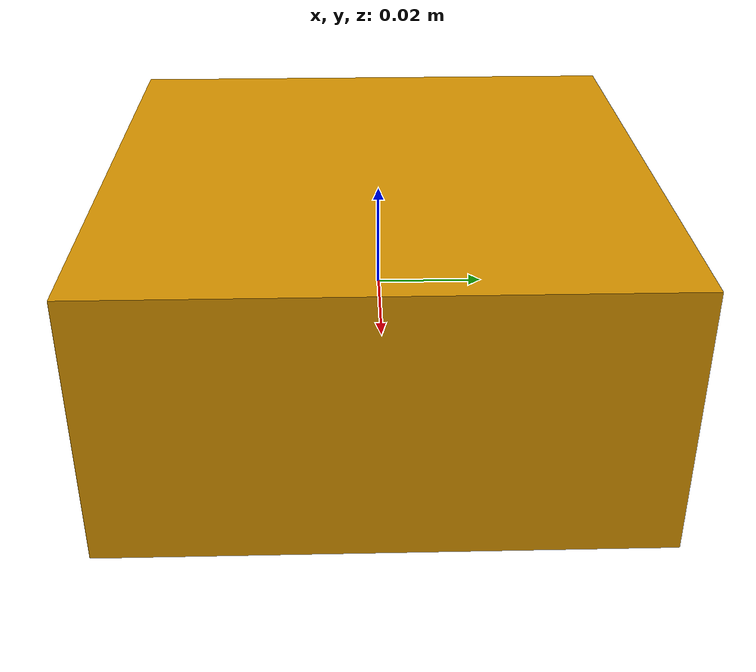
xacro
<?xml version="1.0"?>
<robot xmlns:xacro="http://www.ros.org/wiki/xacro" name="base_link">
<xacro:include filename="$(find sentry_laser_sim)/xacro/fun_define.xacro"/>

<!--laser_link-->
<xacro:mylink_tri myname="laser_link" l="0.1" w="0.1" h="0.05" x="0" y="0" z="0" wx="0" wy="0" wz="0" color="red" r="0" g="0" b="0" a="1" mass="0.1" ixx="0.001" ixy="0.0" ixz="0.0" iyy="0.001" iyz="0.0" izz="0.001"/>

<!--laser_fake_link-->

<!--livox_laser_simulation-->
<xacro:property name="M_PI" value="3.14159"/>
  <xacro:property name="laser_min_range" value="0.4"/>
  <xacro:property name="laser_max_range" value="30.0"/>
  <xacro:property name="ros_topic" value="scan1"/>
  <xacro:property name="samples" value="60000"/>
  <xacro:property name="downsample" value="0"/>

  <xacro:macro name="null_inertial">
    <inertial>
      <mass value="0.1"/>
    <inertia ixx="0.01" ixy="0" ixz="0"
          iyy="0.01" iyz="0"
          izz="0.01"/>
    </inertial>

  </xacro:macro>

  <xacro:macro name="Livox_Mid_gazebo_sensor" params="visualize:=True update_rate:=10 resolution:=0.002 noise_mean:=0.0 noise_stddev:=0.00 name:=laser">
    <gazebo reference="${name}_link">
      <sensor type="ray" name="${name}_livox">
        <pose>0 0 0 0 0 0</pose>
        <visualize>${visualize}</visualize>
        <update_rate>10</update_rate>
        <plugin name="gazebo_ros_laser_controller" filename="liblivox_laser_simulation.so">
			<ray>
			  <scan>
				<horizontal>
				<samples>100</samples>
				<resolution>1</resolution>
				<min_angle>${0}</min_angle>
				<max_angle>${2*M_PI}</max_angle>
				</horizontal>
				<vertical>
				<samples>12</samples>
				<resolution>1</resolution>
				<min_angle>${-7.22/180*M_PI}</min_angle>
				<max_angle>${55.22/180*M_PI}</max_angle>
				</vertical>
			  </scan>
			  <range>
				<min>${laser_min_range}</min>
				<max>${laser_max_range}</max>
				<resolution>${resolution}</resolution>
			  </range>
			  <noise>
				<type>gaussian</type>
				<mean>${noise_mean}</mean>
				<stddev>${noise_stddev}</stddev>
			  </noise>
			</ray>
          <visualize>${visualize}</visualize>
		  <samples>${samples}</samples>
		  <downsample>${downsample}</downsample>
		  <csv_file_name>package://sentry_laser_sim/scan_mode/mid360.csv</csv_file_name>
		  <ros_topic>${ros_topic}</ros_topic>
        </plugin>
      </sensor>
    </gazebo>
  </xacro:macro>

    <xacro:Livox_Mid_gazebo_sensor name="laser" visualize="true"/>

<gazebo reference="laser_link">
        <gravity>true</gravity>
        <sensor name="imu_sensor" type="imu">
            <always_on>true</always_on>
            <update_rate>100</update_rate>
            <visualize>true</visualize>
            <topic>__default_topic__</topic>
            <plugin filename="libgazebo_ros_imu_sensor.so" name="imu_plugin">
                <topicName>imu</topicName>
                <bodyName>imu</bodyName>
                <updateRateHZ>100.0</updateRateHZ>
                <gaussianNoise>0.0</gaussianNoise>
                <xyzOffset>0 0 0</xyzOffset>
                <rpyOffset>0 0 0</rpyOffset>
                <frameName>imu</frameName>
            </plugin>
            <pose>0 0 0 0 0 0</pose>
        </sensor>
    </gazebo>

</robot>

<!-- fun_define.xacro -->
<robot xmlns:xacro="http://www.ros.org/wiki/xacro" name="body_define">
<!--常量定义-->
<xacro:property name="M_PI" value="3.1415926535897931" />

<!--定义矩形link-->
<xacro:macro name="mylink_tri" params="myname l w h x y z wx wy wz color r g b a mass ixx ixy ixz iyy iyz izz">
	<link name="${myname}">
	<visual>
		<geometry>
			<box size="${l} ${w} ${h}"/>
		</geometry>
		<origin xyz="${x} ${y} ${z}" rpy="${wx} ${wy} ${wz}"/>
		<meterial name="${color}">
			<color rgba="${r} ${g} ${b} ${a}"/>
		</meterial>
	</visual>
	<collision>
		<geometry>
			<box size="${l} ${w} ${h}"/>
		</geometry>
	</collision>
	<inertial>
		<mass value="${mass}"/>
		<inertia ixx="${ixx}" ixy="${ixy}" ixz="${ixz}" iyy="${iyy}" iyz="${iyz}" izz="${izz}"/>
	</inertial>
	</link>
</xacro:macro>

<!--定义椭圆link-->
<xacro:macro name="mylink_cyl" params="link_name l r_ x y z wx wy wz color r g b a mass ixx ixy ixz iyy iyz izz">
	<link name="${link_name}">
		<visual>
			<geometry>
				<cylinder length="${l}" radius="${r_}"/>
			</geometry>
			<origin xyz="${x} ${y} ${z}" rpy="${wx} ${wy} ${wz}"/>
			<meterial name="${color}">
				<color rgba="${r} ${g} ${b} ${a}"/>
			</meterial>
		</visual>
		<collision>
			<geometry>
				<cylinder length="${l}" radius="${r_}"/>
			</geometry>
		</collision>
		<inertial>
			<mass value="${mass}"/>
			<inertia ixx="${ixx}" ixy="${ixy}" ixz="${ixz}" iyy="${iyy}" iyz="${iyz}" izz="${izz}"/>
		</inertial>
	</link>
</xacro:macro>

<!--定义fixed_joint-->
<xacro:macro name="myjoint_fixed" params="joint_name joint_type x y z wx wz wy parent_link child_link">
	<joint name="${joint_name}" type="${joint_type}">
		<origin xyz="${x} ${y} ${z}" rpy="${wx} ${wy} ${wz}"/>
  		<parent link="${parent_link}"/>
   		<child link="${child_link}"/>
	</joint>
</xacro:macro>

<!--定义continuous_joint-->
<xacro:macro name="myjoint_continuous" params="joint_name joint_type x y z wx wy wz parent_link child_link ax ay az">
	<joint name="${joint_name}" type="${joint_type}">
		<origin xyz="${x} ${y} ${z}" rpy="${wx} ${wy} ${wz}"/>
    		<parent link="${parent_link}" />
    		<child link="${child_link}" />
    		<axis xyz="${ax} ${ay} ${az}"/>
	</joint>
</xacro:macro>

<!-- 传动实现:用于连接控制器与关节 -->
    <xacro:macro name="joint_trans_v" params="joint_name">
        <!-- Transmission is important to link the joints and the controller -->
        <transmission name="${joint_name}_trans">
            <type>transmission_interface/SimpleTransmission</type>
            <joint name="${joint_name}">
                <hardwareInterface>hardware_interface/VelocityJointInterface</hardwareInterface>
            </joint>
            <actuator name="${joint_name}_motor">
                <hardwareInterface>hardware_interface/VelocityJointInterface</hardwareInterface>
                <mechanicalReduction>1</mechanicalReduction>
            </actuator>
        </transmission>
    </xacro:macro>
<!-- 传动实现:用于连接控制器与关节 -->
    <xacro:macro name="joint_trans_e" params="joint_name">
    <transmission name="trans_${joint_name}">
      <type>transmission_interface/SimpleTransmission</type>
      <actuator name="${joint_name}_actuator">
        <mechanicalReduction>1</mechanicalReduction>
      </actuator>
      <joint name="${joint_name}">
        <hardwareInterface>hardware_interface/EffortJointInterface</hardwareInterface>
      </joint>
    </transmission>
    </xacro:macro>

</robot>
